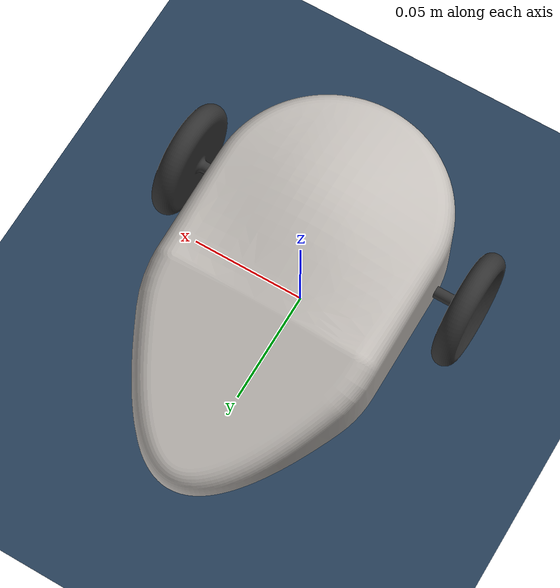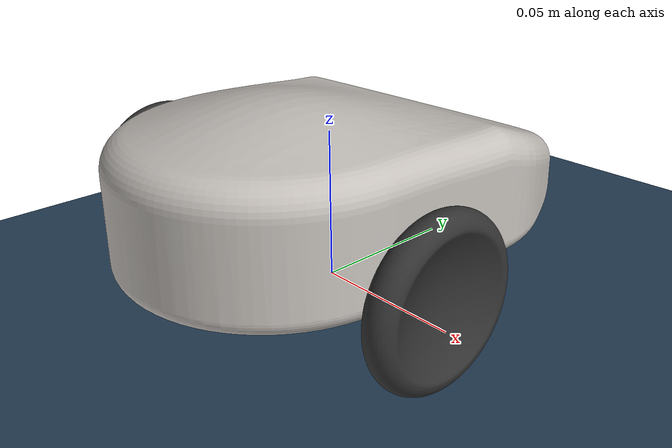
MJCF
<mujoco model="Mobile Robot">

	<asset>
		<texture name="grid" type="2d" builtin="checker" width="512" height="512" rgb1=".1 .2 .3" rgb2=".2 .3 .4"/>
		<material name="grid" texture="grid" texrepeat="1 1" texuniform="true" reflectance=".2"/>

		<mesh name="chassis" file="3D_Model/STL/chassis.stl"/>
		<mesh name="R_wheel" file="3D_Model/STL/R_wheel.stl"/>
		<mesh name="L_wheel" file="3D_Model/STL/L_wheel.stl"/>
	</asset>

	<worldbody>
		<geom name="ground" type="plane" size="0 0 0.1" material="grid"/>
		<light directional="false" active="true" pos="0 0 10" dir="0 0 -1"/>

			<body name="main" pos="0 0 0.03873">
				<freejoint/>
				<geom type="mesh" mesh="chassis" pos="0 0 0" rgba="0.773 0.754 0.734 1.00"/>
				<inertial pos="0 0 0" xyaxes="0.00 0.99 -0.13 -1.00 0.00 0.00" mass="1.16851" diaginertia="12300.89e-7 24387.44e-7 30511.55e-7"/>

				<body name="idle_wheel" pos="0 0.07135 -0.02373">
					<geom type="sphere" size ="0.015" density="0.000001" rgba="0.3 0.3 0.5 1" priority="1" condim="1"/>
					<joint type="ball" pos="0.0 0.0 0.0"/>
				</body>

				<body name="R_wheel_body" xyaxes="1 0 0 0 1 0" pos="+0.06357 -0.02115 -0.01373">
					<geom type="mesh" mesh="R_wheel" rgba="0.2 0.2 0.2 1.0" friction="0"/>
					<inertial pos="0 0 0" xyaxes="0.00000 0.70711 0.70711 0.00000 -0.70711 0.70711" mass="0.03840806" diaginertia="72.07022e-7 72.07022e-7 126.35621e-7"/>
					<joint name="rightWheel" type="hinge" pos="0 0 0" axis="-1 0 0" damping="1e-4" frictionloss="1e-2"/>
				</body>

				<body name="L_wheel_body" xyaxes="1 0 0 0 1 0" pos="-0.06357 -0.02115 -0.01373">
					<geom type="mesh" mesh="L_wheel" rgba="0.2 0.2 0.2 1.0" friction="0"/>
					<inertial pos="0 0 0" xyaxes="0.00000 0.70711 -0.70711 0.00000 -0.70711 -0.70711" mass="0.03840806" diaginertia="72.07022e-7 72.07022e-7 126.35621e-7"/>
					<joint name="leftWheel" type="hinge" pos="0 0 0" axis="-1 0 0" damping="1e-4" frictionloss="1e-2"/>
				</body>

			</body>

	</worldbody>

	<actuator>
		<motor name="rightMotor" joint="rightWheel"/>
		<motor name="leftMotor"  joint="leftWheel"/>
	</actuator>

	<sensor>
		<framepos objtype="xbody" objname="main"/>
		<frameyaxis objtype="xbody" objname="main"/>
		<framelinvel objtype="xbody" objname="main"/>
		<frameangvel objtype="xbody" objname="main"/>
	    <jointpos name="rightWheelAngle" joint="rightWheel"/>
	    <jointpos name="leftWheelAngle" joint="leftWheel"/>
		<jointvel name="rightWheelVel" joint="rightWheel"/>
		<jointvel name="leftWheelVel" joint="leftWheel"/>
	</sensor>

	<contact>
		<exclude body1="main" body2="R_wheel_body"/>
		<exclude body1="main" body2="L_wheel_body"/>
		<exclude body1="main" body2="idle_wheel"/>
	</contact>

</mujoco>
